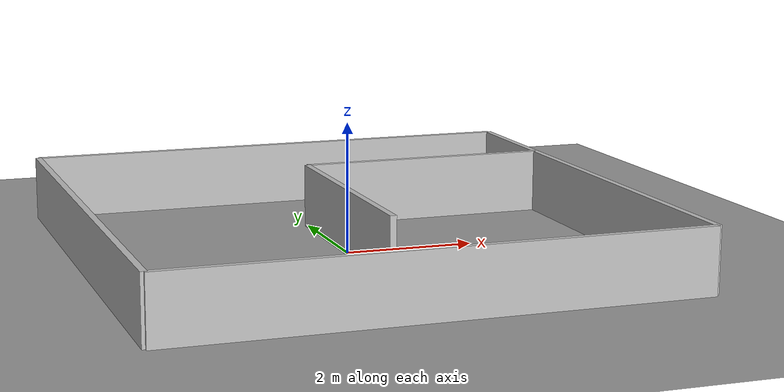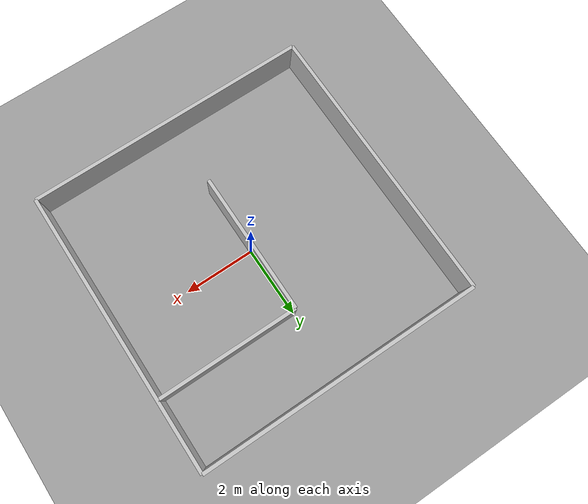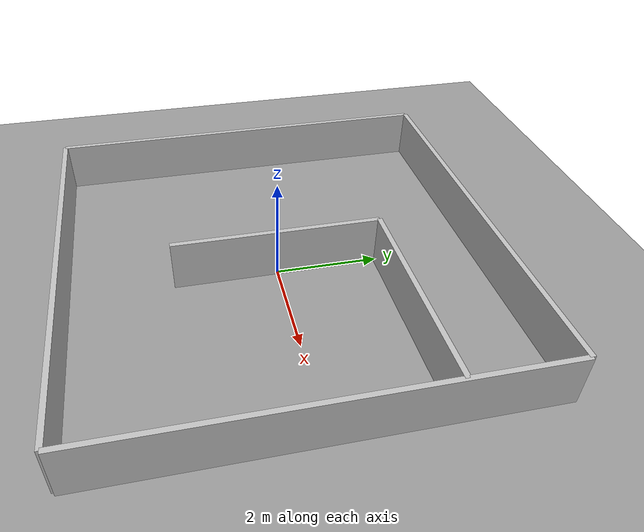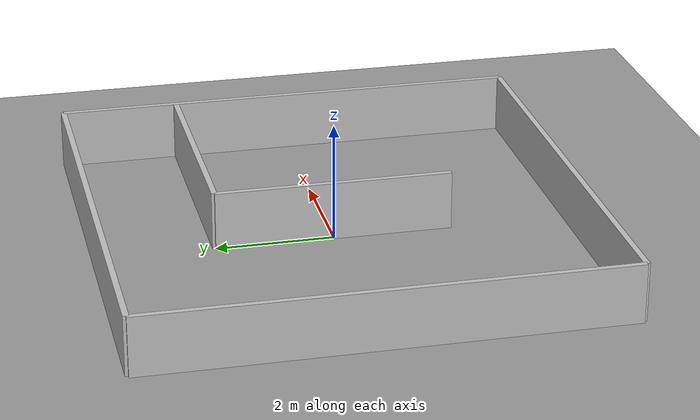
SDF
<?xml version="1.0" ?>
<sdf version="1.8">
  <world name="l_shaped">
    <physics name="default_physics" type="dartsim">
      <max_step_size>0.0005</max_step_size>
      <real_time_factor>1.0</real_time_factor>
      <real_time_update_rate>2000</real_time_update_rate>
    </physics>
    <scene>
      <ambient>0.6 0.6 0.6 1</ambient>
      <background>0.5 0.5 0.5 1</background>
      <shadows>false</shadows>
    </scene>
    <gui fullscreen="0">
      <camera name="user_camera">
        <pose>1 1 1 0 0.5 -2.5</pose>
      </camera>
    </gui>
    <plugin filename="gz-sim-physics-system" name="gz::sim::systems::Physics"/>
    <plugin filename="gz-sim-user-commands-system" name="gz::sim::systems::UserCommands"/>
    <plugin filename="gz-sim-scene-broadcaster-system" name="gz::sim::systems::SceneBroadcaster"/>
    <plugin filename="gz-sim-sensors-system" name="gz::sim::systems::Sensors">
      <render_engine>ogre2</render_engine>
    </plugin>
    <light type="directional" name="sun">
      <cast_shadows>true</cast_shadows>
      <pose>0 0 10 0 0 0</pose>
      <diffuse>1.0 1.0 1.0 1</diffuse>
      <specular>0.2 0.2 0.2 1</specular>
      <direction>-0.5 0.1 -0.9</direction>
    </light>
    <model name="ground_plane">
      <static>true</static>
      <link name="link">
        <collision name="collision">
          <geometry><plane><normal>0 0 1</normal></plane></geometry>
        </collision>
        <visual name="visual">
          <geometry><plane><normal>0 0 1</normal><size>100 100</size></plane></geometry>
          <material>
            <ambient>0.6 0.6 0.6 1</ambient>
            <diffuse>0.6 0.6 0.6 1</diffuse>
          </material>
        </visual>
      </link>
    </model>

    <!-- Outer walls forming an L shape -->
    <model name="wall_1">
      <static>true</static>
      <pose>0 4 0.5 0 0 0</pose>
      <link name="link">
        <collision name="collision"><geometry><box><size>8 0.1 1</size></box></geometry></collision>
        <visual name="visual">
          <geometry><box><size>8 0.1 1</size></box></geometry>
          <material><ambient>0.75 0.75 0.75 1</ambient><diffuse>0.75 0.75 0.75 1</diffuse></material>
        </visual>
      </link>
    </model>
    <model name="wall_2">
      <static>true</static>
      <pose>4 0 0.5 0 0 1.5708</pose>
      <link name="link">
        <collision name="collision"><geometry><box><size>8 0.1 1</size></box></geometry></collision>
        <visual name="visual">
          <geometry><box><size>8 0.1 1</size></box></geometry>
          <material><ambient>0.75 0.75 0.75 1</ambient><diffuse>0.75 0.75 0.75 1</diffuse></material>
        </visual>
      </link>
    </model>
    <model name="wall_3">
      <static>true</static>
      <pose>-4 0 0.5 0 0 1.5708</pose>
      <link name="link">
        <collision name="collision"><geometry><box><size>8 0.1 1</size></box></geometry></collision>
        <visual name="visual">
          <geometry><box><size>8 0.1 1</size></box></geometry>
          <material><ambient>0.75 0.75 0.75 1</ambient><diffuse>0.75 0.75 0.75 1</diffuse></material>
        </visual>
      </link>
    </model>
    <model name="wall_4">
      <static>true</static>
      <pose>0 -4 0.5 0 0 0</pose>
      <link name="link">
        <collision name="collision"><geometry><box><size>8 0.1 1</size></box></geometry></collision>
        <visual name="visual">
          <geometry><box><size>8 0.1 1</size></box></geometry>
          <material><ambient>0.75 0.75 0.75 1</ambient><diffuse>0.75 0.75 0.75 1</diffuse></material>
        </visual>
      </link>
    </model>
    <!-- Inner corner wall to create L shape -->
    <model name="wall_5">
      <static>true</static>
      <pose>2 2 0.5 0 0 0</pose>
      <link name="link">
        <collision name="collision"><geometry><box><size>4 0.1 1</size></box></geometry></collision>
        <visual name="visual">
          <geometry><box><size>4 0.1 1</size></box></geometry>
          <material><ambient>0.75 0.75 0.75 1</ambient><diffuse>0.75 0.75 0.75 1</diffuse></material>
        </visual>
      </link>
    </model>
    <model name="wall_6">
      <static>true</static>
      <pose>0 0 0.5 0 0 1.5708</pose>
      <link name="link">
        <collision name="collision"><geometry><box><size>4 0.1 1</size></box></geometry></collision>
        <visual name="visual">
          <geometry><box><size>4 0.1 1</size></box></geometry>
          <material><ambient>0.75 0.75 0.75 1</ambient><diffuse>0.75 0.75 0.75 1</diffuse></material>
        </visual>
      </link>
    </model>
  </world>
</sdf>
